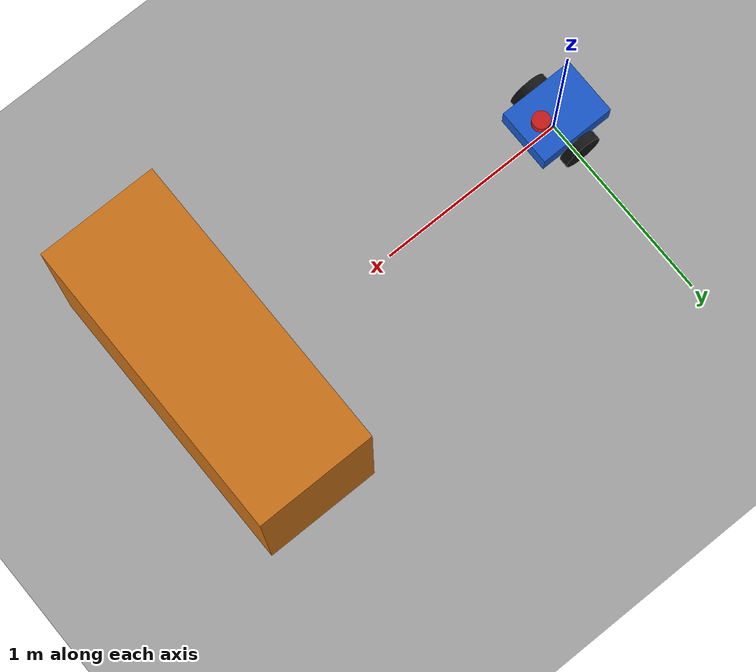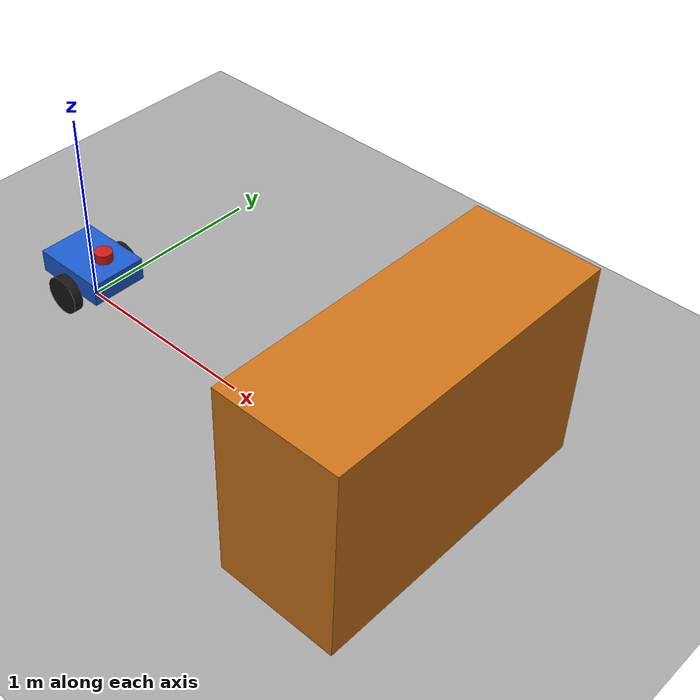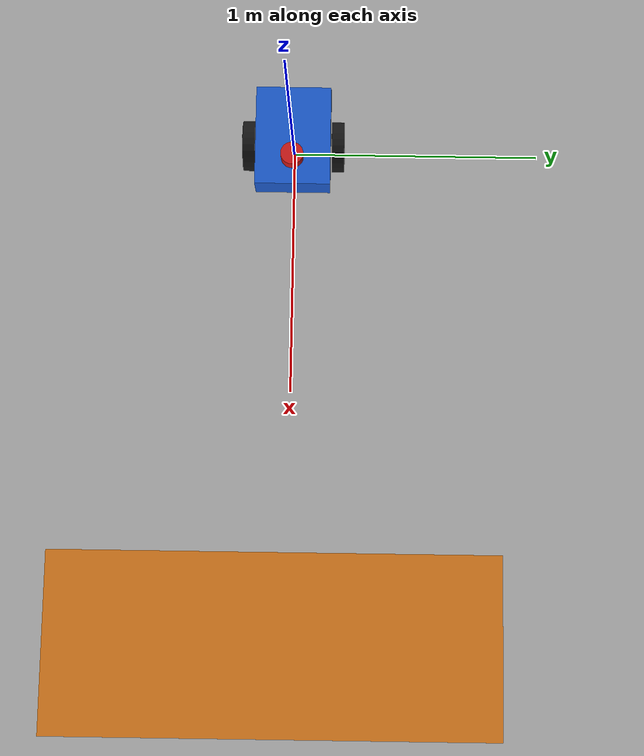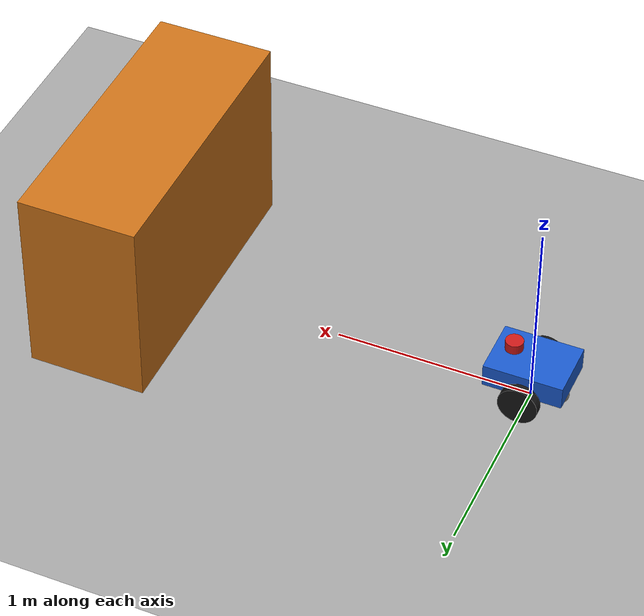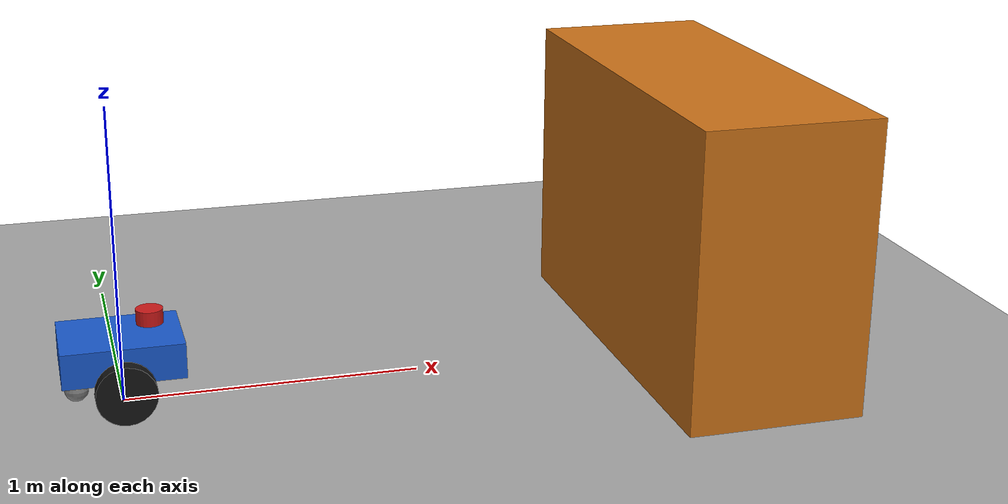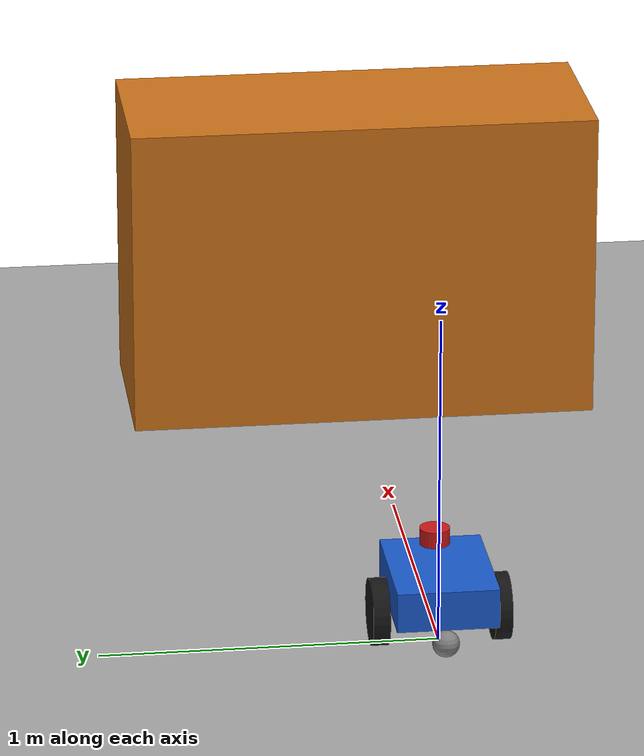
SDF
<?xml version="1.0"?>
<sdf version="1.9">
  <world name="training_world">
    <physics name="physics" type="ode">
      <max_step_size>0.004</max_step_size>
      <real_time_factor>1.0</real_time_factor>
    </physics>
    <plugin filename="gz-sim-physics-system" name="gz::sim::systems::Physics"/>
    <plugin filename="gz-sim-user-commands-system" name="gz::sim::systems::UserCommands"/>
    <plugin filename="gz-sim-scene-broadcaster-system" name="gz::sim::systems::SceneBroadcaster"/>
    <plugin filename="gz-sim-sensors-system" name="gz::sim::systems::Sensors">
      <render_engine>ogre2</render_engine>
    </plugin>

    <gravity>0 0 -9.8</gravity>
    <scene>
      <ambient>0.4 0.4 0.4 1</ambient>
      <background>0.75 0.80 0.90 1</background>
      <shadows>true</shadows>
    </scene>
    <light name="sun" type="directional">
      <cast_shadows>true</cast_shadows>
      <pose>0 0 10 0 0 0</pose>
      <diffuse>0.8 0.8 0.8 1</diffuse>
      <specular>0.2 0.2 0.2 1</specular>
      <direction>-0.5 0.1 -0.9</direction>
    </light>

    <model name="ground_plane">
      <static>true</static>
      <link name="link">
        <collision name="collision">
          <geometry><plane><normal>0 0 1</normal><size>20 20</size></plane></geometry>
        </collision>
        <visual name="visual">
          <geometry><plane><normal>0 0 1</normal><size>20 20</size></plane></geometry>
          <material><ambient>0.65 0.65 0.65 1</ambient><diffuse>0.65 0.65 0.65 1</diffuse></material>
        </visual>
      </link>
    </model>

    <model name="obstacle">
      <static>true</static>
      <pose>2 0 0.5 0 0 0</pose>
      <link name="link">
        <collision name="collision">
          <geometry><box><size>0.6 1.5 1.0</size></box></geometry>
        </collision>
        <visual name="visual">
          <geometry><box><size>0.6 1.5 1.0</size></box></geometry>
          <material><ambient>0.8 0.45 0.1 1</ambient><diffuse>0.8 0.45 0.1 1</diffuse></material>
        </visual>
      </link>
    </model>

    <include>
      <uri>model://training_robot</uri>
      <name>training_robot</name>
      <pose>0 0 0 0 0 0</pose>
    </include>
  </world>
</sdf>

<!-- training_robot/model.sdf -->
<sdf version="1.9">
  <model name="training_robot">
    <static>false</static>
    <self_collide>false</self_collide>

    <link name="base_link">
      <pose>0 0 0.18 0 0 0</pose>
      <inertial>
        <mass>5.0</mass>
        <inertia>
          <ixx>0.05</ixx>
          <iyy>0.08</iyy>
          <izz>0.10</izz>
        </inertia>
      </inertial>
      <collision name="base_collision">
        <geometry><box><size>0.40 0.30 0.12</size></box></geometry>
      </collision>
      <visual name="base_visual">
        <geometry><box><size>0.40 0.30 0.12</size></box></geometry>
        <material>
          <ambient>0.10 0.35 0.80 1</ambient>
          <diffuse>0.10 0.35 0.80 1</diffuse>
        </material>
      </visual>
    </link>

    <link name="left_wheel">
      <pose>0 0.18 0.10 1.570796 0 0</pose>
      <inertial>
        <mass>0.5</mass>
        <inertia><ixx>0.002</ixx><iyy>0.002</iyy><izz>0.002</izz></inertia>
      </inertial>
      <collision name="collision">
        <geometry><cylinder><radius>0.10</radius><length>0.05</length></cylinder></geometry>
        <surface><friction><ode><mu>1.0</mu><mu2>1.0</mu2></ode></friction></surface>
      </collision>
      <visual name="visual">
        <geometry><cylinder><radius>0.10</radius><length>0.05</length></cylinder></geometry>
        <material><ambient>0.08 0.08 0.08 1</ambient><diffuse>0.08 0.08 0.08 1</diffuse></material>
      </visual>
    </link>

    <link name="right_wheel">
      <pose>0 -0.18 0.10 1.570796 0 0</pose>
      <inertial>
        <mass>0.5</mass>
        <inertia><ixx>0.002</ixx><iyy>0.002</iyy><izz>0.002</izz></inertia>
      </inertial>
      <collision name="collision">
        <geometry><cylinder><radius>0.10</radius><length>0.05</length></cylinder></geometry>
        <surface><friction><ode><mu>1.0</mu><mu2>1.0</mu2></ode></friction></surface>
      </collision>
      <visual name="visual">
        <geometry><cylinder><radius>0.10</radius><length>0.05</length></cylinder></geometry>
        <material><ambient>0.08 0.08 0.08 1</ambient><diffuse>0.08 0.08 0.08 1</diffuse></material>
      </visual>
    </link>

    <link name="caster">
      <pose>-0.15 0 0.055 0 0 0</pose>
      <inertial>
        <mass>0.2</mass>
        <inertia><ixx>0.0002</ixx><iyy>0.0002</iyy><izz>0.0002</izz></inertia>
      </inertial>
      <collision name="collision">
        <geometry><sphere><radius>0.04</radius></sphere></geometry>
        <surface><friction><ode><mu>0.01</mu><mu2>0.01</mu2></ode></friction></surface>
      </collision>
      <visual name="visual">
        <geometry><sphere><radius>0.04</radius></sphere></geometry>
        <material><ambient>0.5 0.5 0.5 1</ambient><diffuse>0.5 0.5 0.5 1</diffuse></material>
      </visual>
    </link>

    <link name="lidar_link">
      <pose>0.10 0 0.29 0 0 0</pose>
      <inertial>
        <mass>0.1</mass>
        <inertia><ixx>0.0001</ixx><iyy>0.0001</iyy><izz>0.0001</izz></inertia>
      </inertial>
      <visual name="visual">
        <geometry><cylinder><radius>0.045</radius><length>0.05</length></cylinder></geometry>
        <material><ambient>0.8 0.1 0.1 1</ambient><diffuse>0.8 0.1 0.1 1</diffuse></material>
      </visual>
      <sensor name="lidar" type="gpu_lidar">
        <topic>/scan</topic>
        <update_rate>10</update_rate>
        <always_on>true</always_on>
        <visualize>true</visualize>
        <lidar>
          <scan>
            <horizontal>
              <samples>360</samples>
              <resolution>1</resolution>
              <min_angle>-3.141592</min_angle>
              <max_angle>3.141592</max_angle>
            </horizontal>
          </scan>
          <range>
            <min>0.08</min>
            <max>8.0</max>
            <resolution>0.01</resolution>
          </range>
        </lidar>
      </sensor>
    </link>

    <joint name="left_wheel_joint" type="revolute">
      <parent>base_link</parent>
      <child>left_wheel</child>
      <axis><xyz>0 1 0</xyz></axis>
    </joint>
    <joint name="right_wheel_joint" type="revolute">
      <parent>base_link</parent>
      <child>right_wheel</child>
      <axis><xyz>0 1 0</xyz></axis>
    </joint>
    <joint name="caster_joint" type="ball">
      <parent>base_link</parent>
      <child>caster</child>
    </joint>
    <joint name="lidar_joint" type="fixed">
      <parent>base_link</parent>
      <child>lidar_link</child>
    </joint>

    <plugin filename="gz-sim-diff-drive-system" name="gz::sim::systems::DiffDrive">
      <left_joint>left_wheel_joint</left_joint>
      <right_joint>right_wheel_joint</right_joint>
      <wheel_separation>0.36</wheel_separation>
      <wheel_radius>0.10</wheel_radius>
      <topic>/model/training_robot/cmd_vel</topic>
      <odom_topic>/model/training_robot/odometry</odom_topic>
      <tf_topic>/model/training_robot/tf</tf_topic>
      <frame_id>odom</frame_id>
      <child_frame_id>base_link</child_frame_id>
      <odom_publish_frequency>30</odom_publish_frequency>
      <max_linear_velocity>1.0</max_linear_velocity>
      <max_angular_velocity>2.0</max_angular_velocity>
    </plugin>
  </model>
</sdf>
